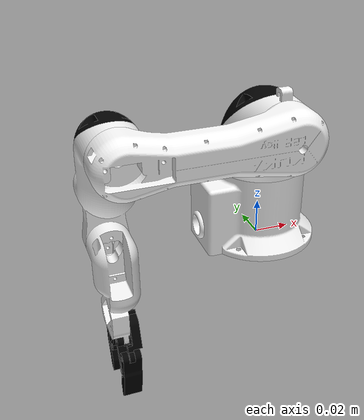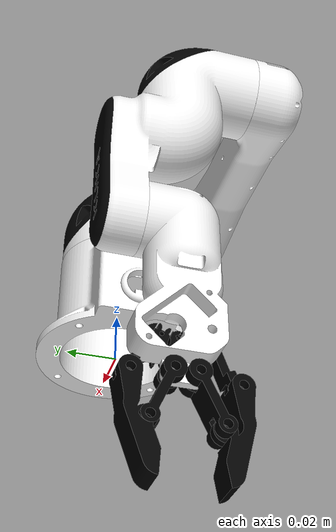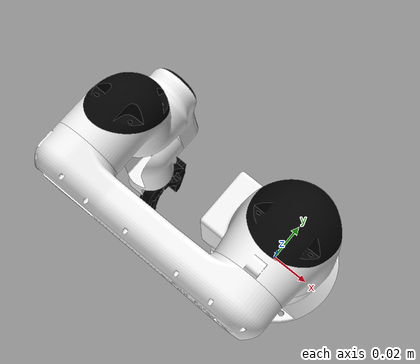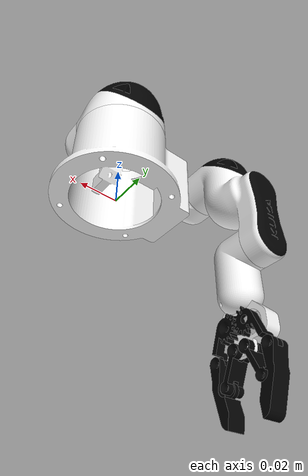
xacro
<?xml version="1.0" ?>
<robot name="kuka" xmlns:xacro="http://www.ros.org/wiki/xacro">

<xacro:include filename="$(find kuka_description)/urdf/materials.xacro" />
<xacro:include filename="$(find kuka_description)/urdf/kuka.trans" />
<xacro:include filename="$(find kuka_description)/urdf/kuka.gazebo" />
<link name="base_link">
  <inertial>
    <origin xyz="-0.0029378927519108453 -0.0005517491721788975 0.017290958876500877" rpy="0 0 0"/>
    <mass value="0.027395984273896123"/>
    <inertia ixx="1.4e-05" iyy="1.6e-05" izz="2e-05" ixy="0.0" iyz="0.0" ixz="1e-06"/>
  </inertial>
  <visual>
    <origin xyz="0 0 0" rpy="0 0 0"/>
    <geometry>
      <mesh filename="file://$(find kuka_description)/meshes/base_link.stl" scale="0.001 0.001 0.001"/>
    </geometry>
    <material name="white"/>
  </visual>
  <collision>
    <origin xyz="0 0 0" rpy="0 0 0"/>
    <geometry>
      <mesh filename="file://$(find kuka_description)/meshes/base_link.stl" scale="0.001 0.001 0.001"/>
    </geometry>
  </collision>
</link>

<link name="link1_1">
  <inertial>
    <origin xyz="0.0006547470181754348 -0.007089850790327905 0.013898854642724015" rpy="0 0 0"/>
    <mass value="0.013357541101550593"/>
    <inertia ixx="5e-06" iyy="5e-06" izz="5e-06" ixy="-0.0" iyz="1e-06" ixz="0.0"/>
  </inertial>
  <visual>
    <origin xyz="-0.000109 0.000429 -0.045" rpy="0 0 0"/>
    <geometry>
      <mesh filename="file://$(find kuka_description)/meshes/link1_1.stl" scale="0.001 0.001 0.001"/>
    </geometry>
    <material name="white"/>
  </visual>
  <collision>
    <origin xyz="-0.000109 0.000429 -0.045" rpy="0 0 0"/>
    <geometry>
      <mesh filename="file://$(find kuka_description)/meshes/link1_1.stl" scale="0.001 0.001 0.001"/>
    </geometry>
  </collision>
</link>

<link name="link2_1">
  <inertial>
    <origin xyz="-0.03883420204417922 -0.010780789028677493 -5.038069102282494e-05" rpy="0 0 0"/>
    <mass value="0.02621954867895997"/>
    <inertia ixx="3e-06" iyy="3.3e-05" izz="3.2e-05" ixy="1e-06" iyz="0.0" ixz="-0.0"/>
  </inertial>
  <visual>
    <origin xyz="3.6e-05 0.027639 -0.072522" rpy="0 0 0"/>
    <geometry>
      <mesh filename="file://$(find kuka_description)/meshes/link2_1.stl" scale="0.001 0.001 0.001"/>
    </geometry>
    <material name="white"/>
  </visual>
  <collision>
    <origin xyz="3.6e-05 0.027639 -0.072522" rpy="0 0 0"/>
    <geometry>
      <mesh filename="file://$(find kuka_description)/meshes/link2_1.stl" scale="0.001 0.001 0.001"/>
    </geometry>
  </collision>
</link>

<link name="link3_1">
  <inertial>
    <origin xyz="-0.03321537926841532 0.03301495309357509 -2.229494525492204e-05" rpy="0 0 0"/>
    <mass value="0.027224546014424436"/>
    <inertia ixx="1.1e-05" iyy="1.9e-05" izz="2.5e-05" ixy="9e-06" iyz="0.0" ixz="-0.0"/>
  </inertial>
  <visual>
    <origin xyz="0.086036 0.027639 -0.072522" rpy="0 0 0"/>
    <geometry>
      <mesh filename="file://$(find kuka_description)/meshes/link3_1.stl" scale="0.001 0.001 0.001"/>
    </geometry>
    <material name="white"/>
  </visual>
  <collision>
    <origin xyz="0.086036 0.027639 -0.072522" rpy="0 0 0"/>
    <geometry>
      <mesh filename="file://$(find kuka_description)/meshes/link3_1.stl" scale="0.001 0.001 0.001"/>
    </geometry>
  </collision>
</link>

<link name="link4_1">
  <inertial>
    <origin xyz="-0.019148246861331403 -0.012489446111304741 -0.0007892710934023078" rpy="0 0 0"/>
    <mass value="0.01811481566128472"/>
    <inertia ixx="2e-06" iyy="6e-06" izz="7e-06" ixy="-1e-06" iyz="-0.0" ixz="0.0"/>
  </inertial>
  <visual>
    <origin xyz="0.156036 -0.014361 -0.072522" rpy="0 0 0"/>
    <geometry>
      <mesh filename="file://$(find kuka_description)/meshes/link4_1.stl" scale="0.001 0.001 0.001"/>
    </geometry>
    <material name="white"/>
  </visual>
  <collision>
    <origin xyz="0.156036 -0.014361 -0.072522" rpy="0 0 0"/>
    <geometry>
      <mesh filename="file://$(find kuka_description)/meshes/link4_1.stl" scale="0.001 0.001 0.001"/>
    </geometry>
  </collision>
</link>

<link name="link1_cap_1">
  <inertial>
    <origin xyz="-0.013013466916256093 0.016145486766315588 -0.006130596599308091" rpy="0 0 0"/>
    <mass value="0.0053726515113858425"/>
    <inertia ixx="1e-06" iyy="1e-06" izz="1e-06" ixy="-0.0" iyz="0.0" ixz="-0.0"/>
  </inertial>
  <visual>
    <origin xyz="-0.013004 0.007554 -0.080155" rpy="0 0 0"/>
    <geometry>
      <mesh filename="file://$(find kuka_description)/meshes/link1_cap_1.stl" scale="0.001 0.001 0.001"/>
    </geometry>
    <material name="black"/>
  </visual>
  <collision>
    <origin xyz="-0.013004 0.007554 -0.080155" rpy="0 0 0"/>
    <geometry>
      <mesh filename="file://$(find kuka_description)/meshes/link1_cap_1.stl" scale="0.001 0.001 0.001"/>
    </geometry>
  </collision>
</link>

<link name="link3_cap1_1">
  <inertial>
    <origin xyz="0.010025100928182748 -0.005161271039292805 -0.009084021004267154" rpy="0 0 0"/>
    <mass value="0.003373728597348495"/>
    <inertia ixx="0.0" iyy="0.0" izz="0.0" ixy="0.0" iyz="-0.0" ixz="0.0"/>
  </inertial>
  <visual>
    <origin xyz="0.091605 -0.006112 -0.081774" rpy="0 0 0"/>
    <geometry>
      <mesh filename="file://$(find kuka_description)/meshes/link3_cap1_1.stl" scale="0.001 0.001 0.001"/>
    </geometry>
    <material name="black"/>
  </visual>
  <collision>
    <origin xyz="0.091605 -0.006112 -0.081774" rpy="0 0 0"/>
    <geometry>
      <mesh filename="file://$(find kuka_description)/meshes/link3_cap1_1.stl" scale="0.001 0.001 0.001"/>
    </geometry>
  </collision>
</link>

<link name="link3_cap2_1">
  <inertial>
    <origin xyz="-0.15197099020904353 -0.08938094507503869 -0.023239283494323013" rpy="0 0 0"/>
    <mass value="0.00284293863892875"/>
    <inertia ixx="0.0" iyy="1e-06" izz="1e-06" ixy="-0.0" iyz="-0.0" ixz="0.0"/>
  </inertial>
  <visual>
    <origin xyz="-0.014994 -0.117293 -0.095763" rpy="0 0 0"/>
    <geometry>
      <mesh filename="file://$(find kuka_description)/meshes/link3_cap2_1.stl" scale="0.001 0.001 0.001"/>
    </geometry>
    <material name="black"/>
  </visual>
  <collision>
    <origin xyz="-0.014994 -0.117293 -0.095763" rpy="0 0 0"/>
    <geometry>
      <mesh filename="file://$(find kuka_description)/meshes/link3_cap2_1.stl" scale="0.001 0.001 0.001"/>
    </geometry>
  </collision>
</link>

<link name="engranaje1_1">
  <inertial>
    <origin xyz="-0.004897850580169505 0.0034635734527817767 -0.001782787558221463" rpy="0 0 0"/>
    <mass value="0.0007162375213993948"/>
    <inertia ixx="0.0" iyy="0.0" izz="0.0" ixy="0.0" iyz="-0.0" ixz="0.0"/>
  </inertial>
  <visual>
    <origin xyz="0.200506 -0.006361 -0.069712" rpy="0 0 0"/>
    <geometry>
      <mesh filename="file://$(find kuka_description)/meshes/engranaje1_1.stl" scale="0.001 0.001 0.001"/>
    </geometry>
    <material name="black"/>
  </visual>
  <collision>
    <origin xyz="0.200506 -0.006361 -0.069712" rpy="0 0 0"/>
    <geometry>
      <mesh filename="file://$(find kuka_description)/meshes/engranaje1_1.stl" scale="0.001 0.001 0.001"/>
    </geometry>
  </collision>
</link>

<link name="engranaje2_1">
  <inertial>
    <origin xyz="-0.003720863040076239 -0.002377715738107411 -0.002001547197835074" rpy="0 0 0"/>
    <mass value="0.0009916544624793446"/>
    <inertia ixx="0.0" iyy="0.0" izz="0.0" ixy="-0.0" iyz="0.0" ixz="0.0"/>
  </inertial>
  <visual>
    <origin xyz="0.200506 0.007639 -0.069712" rpy="0 0 0"/>
    <geometry>
      <mesh filename="file://$(find kuka_description)/meshes/engranaje2_1.stl" scale="0.001 0.001 0.001"/>
    </geometry>
    <material name="black"/>
  </visual>
  <collision>
    <origin xyz="0.200506 0.007639 -0.069712" rpy="0 0 0"/>
    <geometry>
      <mesh filename="file://$(find kuka_description)/meshes/engranaje2_1.stl" scale="0.001 0.001 0.001"/>
    </geometry>
  </collision>
</link>

<link name="barra2_1">
  <inertial>
    <origin xyz="-0.006981416361025228 0.003255813758706021 0.001736038282841787" rpy="0 0 0"/>
    <mass value="0.0008376224665194664"/>
    <inertia ixx="0.0" iyy="0.0" izz="0.0" ixy="0.0" iyz="-0.0" ixz="0.0"/>
  </inertial>
  <visual>
    <origin xyz="0.213498 -0.003361 -0.069712" rpy="0 0 0"/>
    <geometry>
      <mesh filename="file://$(find kuka_description)/meshes/barra2_1.stl" scale="0.001 0.001 0.001"/>
    </geometry>
    <material name="black"/>
  </visual>
  <collision>
    <origin xyz="0.213498 -0.003361 -0.069712" rpy="0 0 0"/>
    <geometry>
      <mesh filename="file://$(find kuka_description)/meshes/barra2_1.stl" scale="0.001 0.001 0.001"/>
    </geometry>
  </collision>
</link>

<link name="barra1_1">
  <inertial>
    <origin xyz="-0.0069814216506425 -0.003255436950101849 0.0017360383457993706" rpy="0 0 0"/>
    <mass value="0.0008376221812366715"/>
    <inertia ixx="0.0" iyy="0.0" izz="0.0" ixy="-0.0" iyz="0.0" ixz="0.0"/>
  </inertial>
  <visual>
    <origin xyz="0.213498 0.004639 -0.069712" rpy="0 0 0"/>
    <geometry>
      <mesh filename="file://$(find kuka_description)/meshes/barra1_1.stl" scale="0.001 0.001 0.001"/>
    </geometry>
    <material name="black"/>
  </visual>
  <collision>
    <origin xyz="0.213498 0.004639 -0.069712" rpy="0 0 0"/>
    <geometry>
      <mesh filename="file://$(find kuka_description)/meshes/barra1_1.stl" scale="0.001 0.001 0.001"/>
    </geometry>
  </collision>
</link>

<link name="pinza2_1">
  <inertial>
    <origin xyz="-0.015538185610645683 0.001525907733314135 0.0017784868513636976" rpy="0 0 0"/>
    <mass value="0.0022932493664789815"/>
    <inertia ixx="0.0" iyy="0.0" izz="0.0" ixy="0.0" iyz="0.0" ixz="-0.0"/>
  </inertial>
  <visual>
    <origin xyz="0.216625 0.018028 -0.069712" rpy="0 0 0"/>
    <geometry>
      <mesh filename="file://$(find kuka_description)/meshes/pinza2_1.stl" scale="0.001 0.001 0.001"/>
    </geometry>
    <material name="black"/>
  </visual>
  <collision>
    <origin xyz="0.216625 0.018028 -0.069712" rpy="0 0 0"/>
    <geometry>
      <mesh filename="file://$(find kuka_description)/meshes/pinza2_1.stl" scale="0.001 0.001 0.001"/>
    </geometry>
  </collision>
</link>

<link name="pinza1_1">
  <inertial>
    <origin xyz="-0.015346460858471772 -0.0028736207797861475 0.001778487025626177" rpy="0 0 0"/>
    <mass value="0.0022932486588840644"/>
    <inertia ixx="0.0" iyy="0.0" izz="0.0" ixy="-0.0" iyz="-0.0" ixz="-0.0"/>
  </inertial>
  <visual>
    <origin xyz="0.216225 -0.017345 -0.070162" rpy="0 0 0"/>
    <geometry>
      <mesh filename="file://$(find kuka_description)/meshes/pinza1_1.stl" scale="0.001 0.001 0.001"/>
    </geometry>
    <material name="black"/>
  </visual>
  <collision>
    <origin xyz="0.216225 -0.017345 -0.070162" rpy="0 0 0"/>
    <geometry>
      <mesh filename="file://$(find kuka_description)/meshes/pinza1_1.stl" scale="0.001 0.001 0.001"/>
    </geometry>
  </collision>
</link>

<joint name="SERVO_01" type="revolute">
  <origin xyz="0.000109 -0.000429 0.045" rpy="0 0 0"/>
  <parent link="base_link"/>
  <child link="link1_1"/>
  <axis xyz="0.0 0.0 1.0"/>
  <limit upper="1.570796" lower="-1.570796" effort="100" velocity="100"/>
</joint>

<joint name="SERVO_02" type="continuous">
  <origin xyz="-0.000145 -0.02721 0.027522" rpy="0 0 0"/>
  <parent link="link1_1"/>
  <child link="link2_1"/>
  <axis xyz="0.0 -1.0 0.0"/>
</joint>

<joint name="SERVO_03" type="revolute">
  <origin xyz="-0.086 0.0 0.0" rpy="0 0 0"/>
  <parent link="link2_1"/>
  <child link="link3_1"/>
  <axis xyz="-0.0 1.0 0.0"/>
  <limit upper="6.283185" lower="3.141593" effort="100" velocity="100"/>
</joint>

<joint name="SERVO_04" type="revolute">
  <origin xyz="-0.07 0.042 0.0" rpy="0 0 0"/>
  <parent link="link3_1"/>
  <child link="link4_1"/>
  <axis xyz="0.0 -1.0 0.0"/>
  <limit upper="1.570796" lower="-1.570796" effort="100" velocity="100"/>
</joint>

<joint name="cap1" type="fixed">
  <origin xyz="0.012895 -0.007125 0.035155" rpy="0 0 0"/>
  <parent link="link1_1"/>
  <child link="link1_cap_1"/>
</joint>

<joint name="cap2" type="fixed">
  <origin xyz="-0.005569 0.033751 0.009252" rpy="0 0 0"/>
  <parent link="link3_1"/>
  <child link="link3_cap1_1"/>
</joint>

<joint name="cap3" type="fixed">
  <origin xyz="0.10103 0.144932 0.023241" rpy="0 0 0"/>
  <parent link="link3_1"/>
  <child link="link3_cap2_1"/>
</joint>

<joint name="A1" type="revolute">
  <origin xyz="-0.04447 -0.008 -0.00281" rpy="0 0 0"/>
  <parent link="link4_1"/>
  <child link="engranaje1_1"/>
  <axis xyz="-0.0 -0.0 -1.0"/>
  <limit upper="1.570796" lower="0.0" effort="100" velocity="100"/>
</joint>

<joint name="A2" type="continuous">
  <origin xyz="-0.04447 -0.022 -0.00281" rpy="0 0 0"/>
  <parent link="link4_1"/>
  <child link="engranaje2_1"/>
  <axis xyz="-0.0 -0.0 -1.0"/>
</joint>

<joint name="B1" type="continuous">
  <origin xyz="-0.057462 -0.011 -0.00281" rpy="0 0 0"/>
  <parent link="link4_1"/>
  <child link="barra2_1"/>
  <axis xyz="-0.0 -0.0 -1.0"/>
</joint>

<joint name="B2" type="continuous">
  <origin xyz="-0.057462 -0.019 -0.00281" rpy="0 0 0"/>
  <parent link="link4_1"/>
  <child link="barra1_1"/>
  <axis xyz="-0.0 -0.0 -1.0"/>
</joint>

<joint name="C2" type="continuous">
  <origin xyz="-0.016119 -0.010389 0.0" rpy="0 0 0"/>
  <parent link="engranaje2_1"/>
  <child link="pinza2_1"/>
  <axis xyz="-0.0 0.0 -1.0"/>
</joint>

<joint name="C1" type="continuous">
  <origin xyz="-0.015719 0.010984 0.00045" rpy="0 0 0"/>
  <parent link="engranaje1_1"/>
  <child link="pinza1_1"/>
  <axis xyz="-0.0 -0.0 -1.0"/>
</joint>

</robot>

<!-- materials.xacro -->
<robot name="kuka" xmlns:xacro="http://www.ros.org/wiki/xacro" >

<material name="silver">
  <color rgba="0.700 0.700 0.700 1.000"/>
</material>

<material name="black">
  <color rgba = "0.01 0.01 0.01 1" />
</material>

<material name="white">
  <color rgba = "0.96 0.96 0.96 1" />
</material>

</robot>

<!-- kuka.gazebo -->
<robot name="kuka" xmlns:xacro="http://www.ros.org/wiki/xacro" >

<xacro:property name="body_color" value="Gazebo/Silver" />

<gazebo>
  <plugin name="control" filename="libgazebo_ros_control.so"/>
</gazebo>
<gazebo reference="base_link">
  <material>${body_color}</material>
  <mu1>0.2</mu1>
  <mu2>0.2</mu2>
  <self_collide>true</self_collide>
  <gravity>true</gravity>
</gazebo>

<gazebo reference="link1_1">
  <material>${body_color}</material>
  <mu1>0.2</mu1>
  <mu2>0.2</mu2>
  <self_collide>true</self_collide>
</gazebo>

<gazebo reference="link2_1">
  <material>${body_color}</material>
  <mu1>0.2</mu1>
  <mu2>0.2</mu2>
  <self_collide>true</self_collide>
</gazebo>

<gazebo reference="link3_1">
  <material>${body_color}</material>
  <mu1>0.2</mu1>
  <mu2>0.2</mu2>
  <self_collide>true</self_collide>
</gazebo>

<gazebo reference="link4_1">
  <material>${body_color}</material>
  <mu1>0.2</mu1>
  <mu2>0.2</mu2>
  <self_collide>true</self_collide>
</gazebo>

<gazebo reference="link1_cap_1">
  <material>${body_color}</material>
  <mu1>0.2</mu1>
  <mu2>0.2</mu2>
  <self_collide>true</self_collide>
</gazebo>

<gazebo reference="link3_cap1_1">
  <material>${body_color}</material>
  <mu1>0.2</mu1>
  <mu2>0.2</mu2>
  <self_collide>true</self_collide>
</gazebo>

<gazebo reference="link3_cap2_1">
  <material>${body_color}</material>
  <mu1>0.2</mu1>
  <mu2>0.2</mu2>
  <self_collide>true</self_collide>
</gazebo>

<gazebo reference="engranaje1_1">
  <material>${body_color}</material>
  <mu1>0.2</mu1>
  <mu2>0.2</mu2>
  <self_collide>true</self_collide>
</gazebo>

<gazebo reference="engranaje2_1">
  <material>${body_color}</material>
  <mu1>0.2</mu1>
  <mu2>0.2</mu2>
  <self_collide>true</self_collide>
</gazebo>

<gazebo reference="barra2_1">
  <material>${body_color}</material>
  <mu1>0.2</mu1>
  <mu2>0.2</mu2>
  <self_collide>true</self_collide>
</gazebo>

<gazebo reference="barra1_1">
  <material>${body_color}</material>
  <mu1>0.2</mu1>
  <mu2>0.2</mu2>
  <self_collide>true</self_collide>
</gazebo>

<gazebo reference="pinza2_1">
  <material>${body_color}</material>
  <mu1>0.2</mu1>
  <mu2>0.2</mu2>
  <self_collide>true</self_collide>
</gazebo>

<gazebo reference="pinza1_1">
  <material>${body_color}</material>
  <mu1>0.2</mu1>
  <mu2>0.2</mu2>
  <self_collide>true</self_collide>
</gazebo>

</robot>
